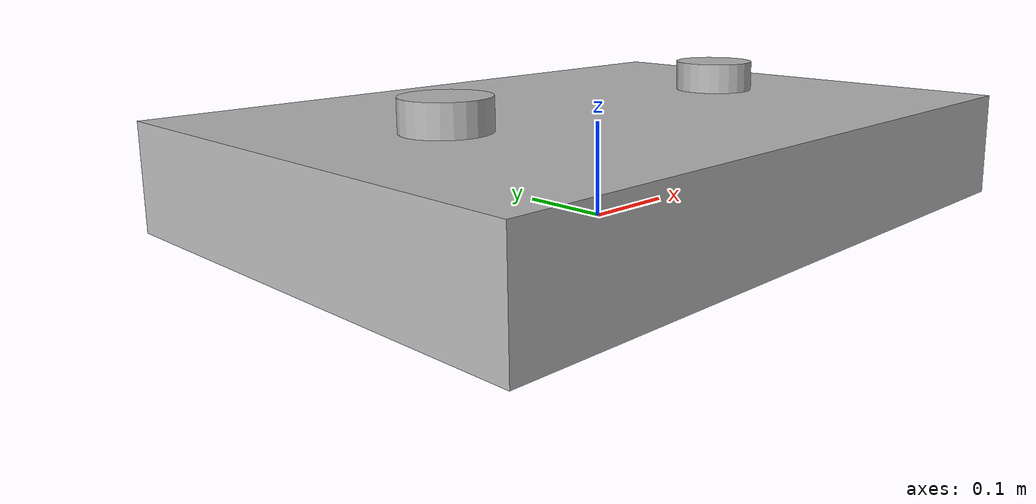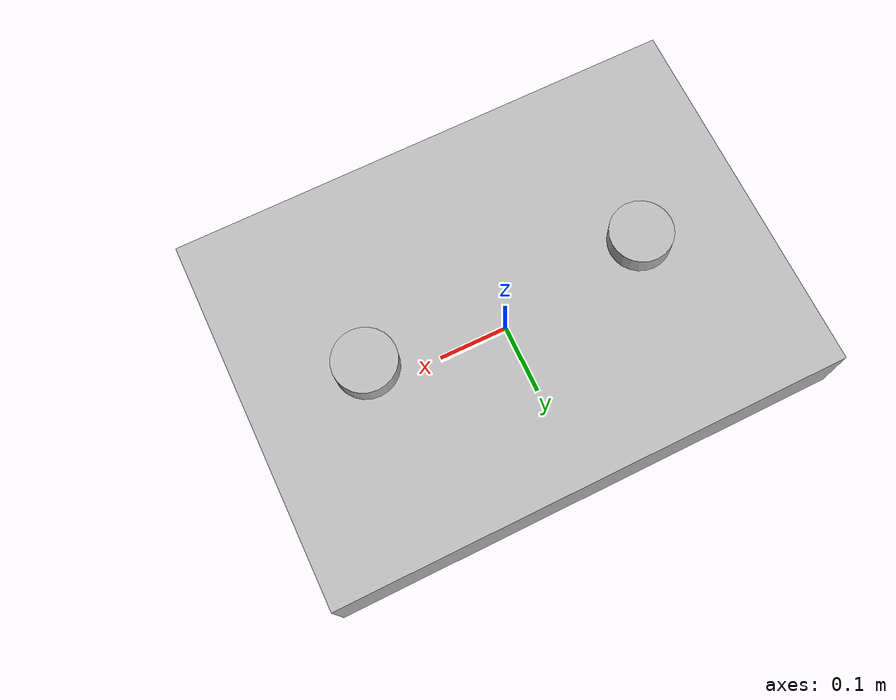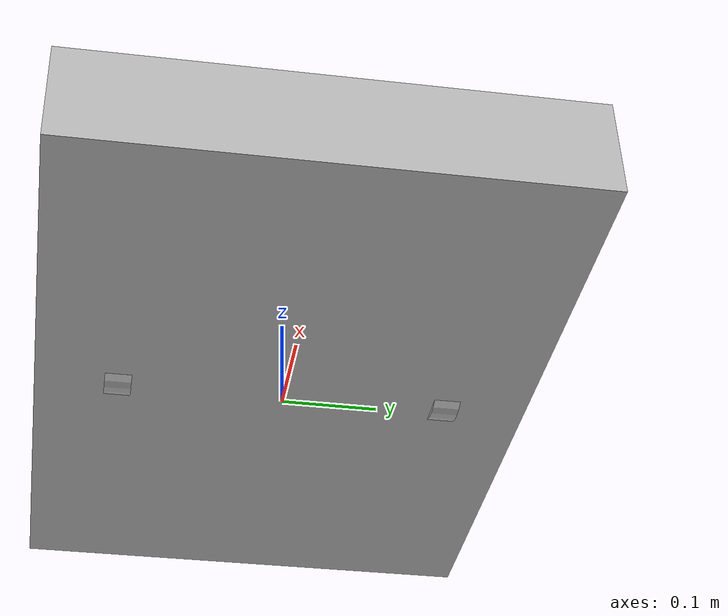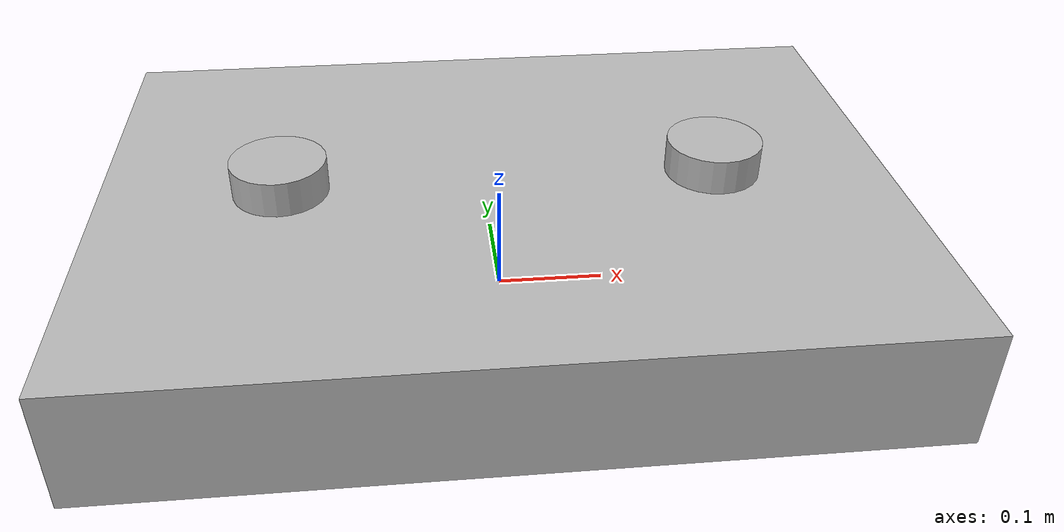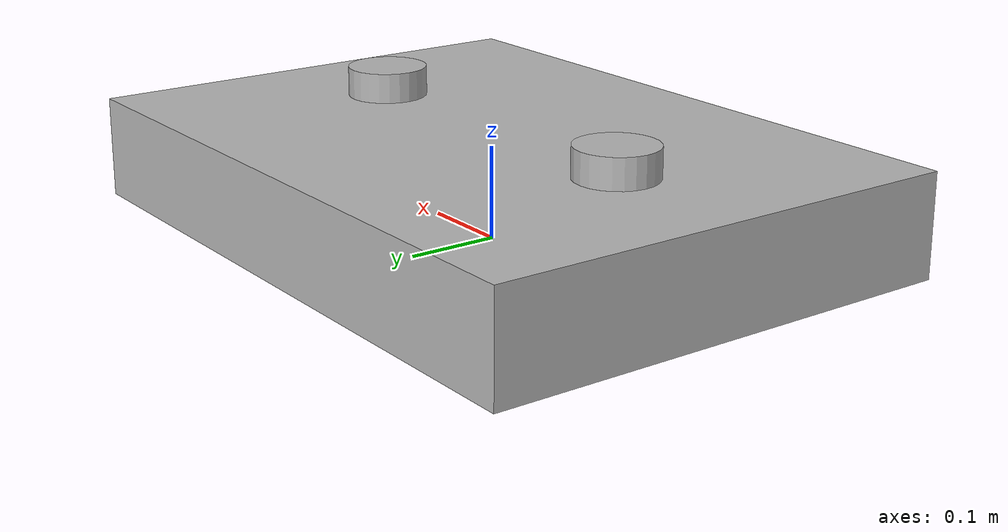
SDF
<?xml version="1.0" ?>
<sdf version="1.6">
  <model name="ceterio_c_100">
    <!-- Base Link -->
    <link name="base_link">
      <pose>0 0 0.06 0 0 0</pose> <!-- Center of the robot -->
      <collision name="collision">
        <geometry>
          <box>
            <size>0.72175 0.52175 0.2</size> <!-- Robot dimensions in meters -->
          </box>
        </geometry>
      </collision>
      <visual name="visual">
        <geometry>
          <box>
            <size>0.72175 0.52175 0.11</size> <!-- Same as collision -->
          </box>
        </geometry>
      </visual>
      <inertial>
        <mass>30.0</mass> <!-- Placeholder, adjust as needed -->
        <inertia>
          <ixx>0.1</ixx> <ixy>0.0</ixy> <ixz>0.0</ixz>
          <iyy>0.1</iyy> <iyz>0.0</iyz>
          <izz>0.1</izz>
        </inertia>
      </inertial>
    </link>

    <!-- Left Wheel -->
    <link name="left_wheel">
      <pose>0 0.1743 0.037 0 -1.5708 -1.5708</pose>
      <collision name="collision">
        <geometry>
          <cylinder>
            <radius>0.037</radius> <length>0.028</length> <!-- Wheel dimensions in meters -->
          </cylinder>
        </geometry>
      </collision>
      <visual name="visual">
        <geometry>
          <cylinder>
            <radius>0.037</radius> <length>0.028</length> <!-- Same as collision -->
          </cylinder>
        </geometry>
      </visual>
      <inertial>
        <mass>1.0</mass> <!-- Placeholder, adjust as needed -->
        <inertia>
          <ixx>0.01</ixx> <ixy>0.0</ixy> <ixz>0.0</ixz>
          <iyy>0.01</iyy> <iyz>0.0</iyz>
          <izz>0.01</izz>
        </inertia>
      </inertial>
    </link>

    <!-- Right Wheel -->
    <link name="right_wheel">
      <pose>0 -0.1743 0.037 0 -1.5708 -1.5708</pose>
      <collision name="collision">
        <geometry>
          <cylinder>
            <radius>0.037</radius> <length>0.028</length> <!-- Wheel dimensions in meters -->
          </cylinder>
        </geometry>
      </collision>
      <visual name="visual">
        <geometry>
          <cylinder>
            <radius>0.037</radius> <length>0.028</length> <!-- Same as collision -->
          </cylinder>
        </geometry>
      </visual>
      <inertial>
        <mass>1.0</mass> <!-- Placeholder, adjust as needed -->
        <inertia>
          <ixx>0.01</ixx> <ixy>0.0</ixy> <ixz>0.0</ixz>
          <iyy>0.01</iyy> <iyz>0.0</iyz>
          <izz>0.01</izz>
        </inertia>
      </inertial>
    </link>

    <!-- Joints for Left and Right Wheels -->
    <joint name="left_wheel_joint" type="revolute">
      <parent>base_link</parent>
      <child>left_wheel</child>
      <axis>
        <xyz>0 1 0</xyz>
        <limit>
          <lower>-1e16</lower>
          <upper>1e16</upper>
        </limit>
      </axis>
    </joint>

    <joint name="right_wheel_joint" type="revolute">
      <parent>base_link</parent>
      <child>right_wheel</child>
      <axis>
        <xyz>0 1 0</xyz>
        <limit>
          <lower>-1e16</lower>
          <upper>1e16</upper>
        </limit>
      </axis>
    </joint>

    <!-- Front LiDAR -->
    <link name="front_lidar">
      <pose>0.198 0 0.13 0 0 0</pose> <!-- Front LiDAR position -->
      <collision name="collision">
        <geometry>
          <cylinder>
            <radius>0.04337</radius> <length>0.035</length> <!-- LiDAR dimensions in meters -->
          </cylinder>
        </geometry>
      </collision>
      <visual name="visual">
        <geometry>
          <cylinder>
            <radius>0.04337</radius> <length>0.035</length> <!-- Same as collision -->
          </cylinder>
        </geometry>
      </visual>
      <inertial>
        <mass>0.5</mass> <!-- Placeholder, adjust as needed -->
        <inertia>
          <ixx>0.01</ixx> <ixy>0.0</ixy> <ixz>0.0</ixz>
          <iyy>0.01</iyy> <iyz>0.0</iyz>
          <izz>0.01</izz>
        </inertia>
      </inertial>
    </link>

    <joint name="front_lidar_joint" type="fixed">
      <parent>base_link</parent>
      <child>front_lidar</child>
    </joint>

    <!-- Rear LiDAR -->
    <link name="rear_lidar">
      <pose>-0.198 0 0.13 0 0 0</pose> <!-- Rear LiDAR position -->
      <collision name="collision">
        <geometry>
          <cylinder>
            <radius>0.04337</radius> <length>0.035</length> <!-- LiDAR dimensions in meters -->
          </cylinder>
        </geometry>
      </collision>
      <visual name="visual">
        <geometry>
          <cylinder>
            <radius>0.04337</radius> <length>0.035</length> <!-- Same as collision -->
          </cylinder>
        </geometry>
      </visual>
      <inertial>
        <mass>0.5</mass> <!-- Placeholder, adjust as needed -->
        <inertia>
          <ixx>0.01</ixx> <ixy>0.0</ixy> <ixz>0.0</ixz>
          <iyy>0.01</iyy> <iyz>0.0</iyz>
          <izz>0.01</izz>
        </inertia>
      </inertial>
    </link>

    <joint name="rear_lidar_joint" type="fixed">
      <parent>base_link</parent>
      <child>rear_lidar</child>
    </joint>

  </model>
</sdf>
